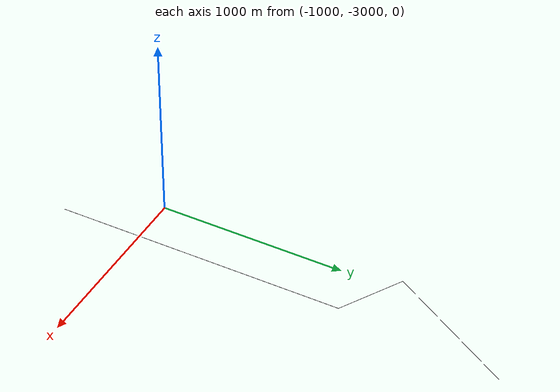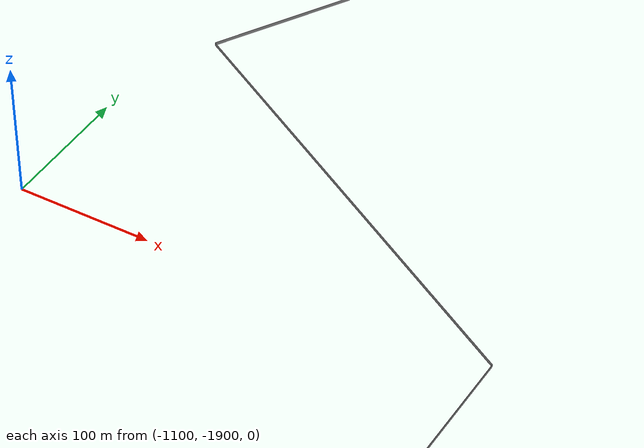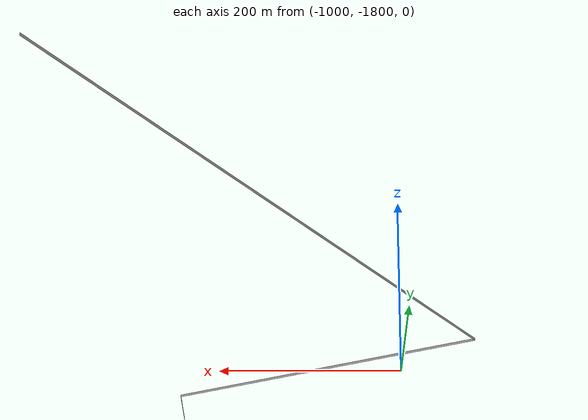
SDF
<?xml version='1.0'?>
<sdf version='1.7'>
  <model name='Class_Environment2'>
    <pose>-537.022 -1718.46 0 0 -0 0</pose>
    <link name='Wall_30'>
      <collision name='Wall_30_Collision'>
        <geometry>
          <box>
            <size>799.5 0.15 2.5</size>
          </box>
        </geometry>
        <pose>0 0 1.25 0 -0 0</pose>
      </collision>
      <visual name='Wall_30_Visual'>
        <pose>0 0 1.25 0 -0 0</pose>
        <geometry>
          <box>
            <size>799.5 0.15 2.5</size>
          </box>
        </geometry>
        <material>
          <script>
            <uri>file://media/materials/scripts/gazebo.material</uri>
            <name>Gazebo/Grey</name>
          </script>
          <ambient>1 1 1 1</ambient>
        </material>
        <meta>
          <layer>0</layer>
        </meta>
      </visual>
      <pose>-337.082 361.515 0 0 -0 -2.0944</pose>
    </link>
    <link name='Wall_31'>
      <collision name='Wall_31_Collision'>
        <geometry>
          <box>
            <size>370.5 0.15 2.5</size>
          </box>
        </geometry>
        <pose>0 0 1.25 0 -0 0</pose>
      </collision>
      <visual name='Wall_31_Visual'>
        <pose>0 0 1.25 0 -0 0</pose>
        <geometry>
          <box>
            <size>370.5 0.15 2.5</size>
          </box>
        </geometry>
        <material>
          <script>
            <uri>file://media/materials/scripts/gazebo.material</uri>
            <name>Gazebo/Grey</name>
          </script>
          <ambient>1 1 1 1</ambient>
        </material>
        <meta>
          <layer>0</layer>
        </meta>
      </visual>
      <pose>-376.553 -77.2015 0 0 -0 -0.523599</pose>
    </link>
    <link name='Wall_32'>
      <collision name='Wall_32_Collision'>
        <geometry>
          <box>
            <size>1548.75 0.15 2.5</size>
          </box>
        </geometry>
        <pose>0 0 1.25 0 -0 0</pose>
      </collision>
      <visual name='Wall_32_Visual'>
        <pose>0 0 1.25 0 -0 0</pose>
        <geometry>
          <box>
            <size>1548.75 0.15 2.5</size>
          </box>
        </geometry>
        <material>
          <script>
            <uri>file://media/materials/scripts/gazebo.material</uri>
            <name>Gazebo/Grey</name>
          </script>
          <ambient>0 0 0 1</ambient>
        </material>
        <meta>
          <layer>0</layer>
        </meta>
      </visual>
      <pose>-216.187 -944.089 0 0 -0 -1.5708</pose>
    </link>
    <static>1</static>
  </model>
</sdf>
